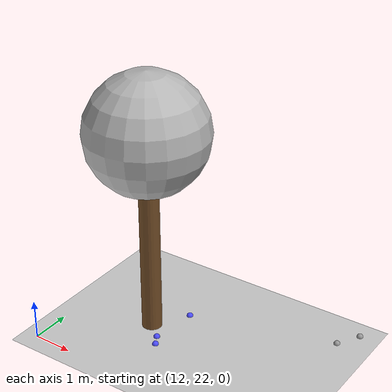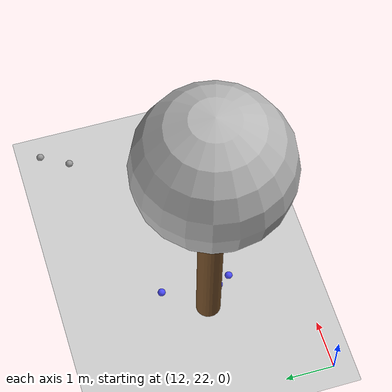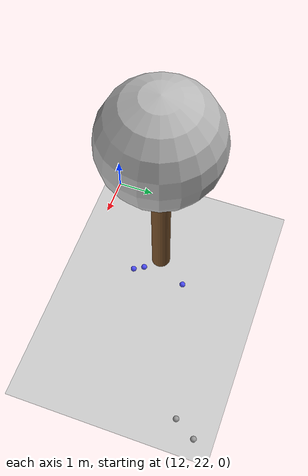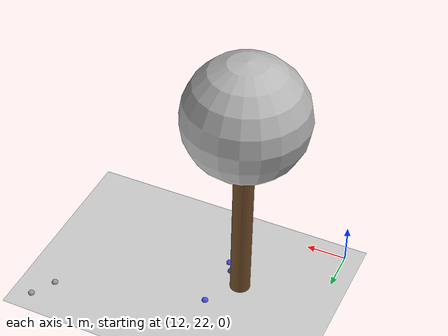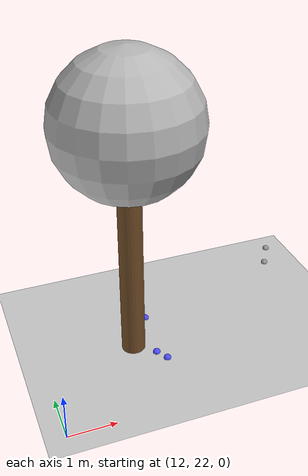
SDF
<sdf version="1.7">
 <world name="default">
  <model name="ground_plane">
   <static>1</static>
   <link name="link">
    <collision name="collision">
     <geometry><plane><normal>0 0 1</normal><size>100 100</size></plane></geometry>
     <surface>
      <contact><collide_bitmask>65535</collide_bitmask></contact>
      <friction><ode><mu>100</mu><mu2>50</mu2></ode></friction>
     </surface>
    </collision>
    <visual name="visual">
     <cast_shadows>0</cast_shadows>
     <geometry><plane><normal>0 0 1</normal><size>100 100</size></plane></geometry>
     <material>
      <script><uri>file://media/materials/scripts/gazebo.material</uri><name>Gazebo/Grey</name></script>
     </material>
    </visual>
   </link>
  </model>
  <model name="tree_simple_39">
   <static>1</static>
   <link name="link">
    <pose>0 0 0.1 0 -0 0</pose>
    <inertial>
     <mass>666</mass>
     <inertia>
      <ixx>0.0861167</ixx>
      <ixy>0</ixy>
      <ixz>0</ixz>
      <iyy>0.0861167</iyy>
      <iyz>0</iyz>
      <izz>0.0861167</izz>
     </inertia>
    </inertial>
    <collision name="collision_trunk">
     <pose>0 0 2 0 -0 0</pose>
     <geometry><cylinder><radius>0.25</radius><length>4</length></cylinder></geometry>
     <surface>
      <contact>
       <poissons_ratio>0.347</poissons_ratio>
       <elastic_modulus>8.8e+09</elastic_modulus>
       <ode><kp>100000</kp><kd>100</kd><max_vel>100</max_vel><min_depth>0.001</min_depth></ode>
      </contact>
      <friction>
       <torsional>
        <coefficient>1</coefficient>
        <use_patch_radius>0</use_patch_radius>
        <surface_radius>0.01</surface_radius>
       </torsional>
      </friction>
     </surface>
    </collision>
    <collision name="collision_treetop">
     <pose>0 0 5.2 0 -0 0</pose>
     <geometry><sphere><radius>1.5</radius></sphere></geometry>
     <surface>
      <contact>
       <poissons_ratio>0.347</poissons_ratio>
       <elastic_modulus>8.8e+09</elastic_modulus>
       <ode><kp>100000</kp><kd>100</kd><max_vel>100</max_vel><min_depth>0.001</min_depth></ode>
      </contact>
      <friction>
       <torsional>
        <coefficient>1</coefficient>
        <use_patch_radius>0</use_patch_radius>
        <surface_radius>0.01</surface_radius>
       </torsional>
      </friction>
     </surface>
    </collision>
    <visual name="trunk">
     <pose>0 0 2 0 -0 0</pose>
     <geometry><cylinder><radius>0.25</radius><length>4</length></cylinder></geometry>
     <material>
      <script>
       <uri>model://tree_simple/scripts</uri>
       <uri>model://tree_simple/materials/textures</uri>
       <name>TreeSimple/Trunk</name>
      </script>
     </material>
    </visual>
    <visual name="treetop">
     <pose>0 0 5.2 0 -0 0</pose>
     <geometry><sphere><radius>1.5</radius></sphere></geometry>
     <material>
      <script>
       <uri>model://tree_simple/scripts</uri>
       <uri>model://tree_simple/materials/textures</uri>
       <name>TreeSimple/Treetop</name>
      </script>
     </material>
    </visual>
   </link>
   <pose>14 24 -0.1 0 -0 0</pose>
  </model>
  <model name="seed_black_25">
   <link name="link">
    <inertial>
     <mass>1</mass>
     <inertia><ixx>0.1</ixx><ixy>0</ixy><ixz>0</ixz><iyy>0.1</iyy><iyz>0</iyz><izz>0.1</izz></inertia>
    </inertial>
    <visual name="visual">
     <geometry><sphere><radius>0.08</radius></sphere></geometry>
     <material>
      <script><name>Gazebo/Grey</name><uri>file://media/materials/scripts/gazebo.material</uri></script>
      <shader type="pixel"><normal_map>__default__</normal_map></shader>
      <ambient>0 0 0 1</ambient>
      <diffuse>0.7 0.7 0.7 1</diffuse>
      <specular>0.01 0.01 0.01 1</specular>
      <emissive>0 0 0 1</emissive>
     </material>
    </visual>
    <collision name="collision">
     <geometry><sphere><radius>0.0005</radius></sphere></geometry>
     <surface>
      <friction>
       <ode><mu>1</mu><mu2>1</mu2><fdir1>0 0 0</fdir1><slip1>0</slip1><slip2>0</slip2></ode>
       <torsional>
        <coefficient>1</coefficient>
        <patch_radius>0</patch_radius>
        <surface_radius>0</surface_radius>
        <use_patch_radius>1</use_patch_radius>
        <ode><slip>0</slip></ode>
       </torsional>
      </friction>
      <bounce><restitution_coefficient>0</restitution_coefficient><threshold>1e+06</threshold></bounce>
      <contact>
       <collide_without_contact>0</collide_without_contact>
       <collide_without_contact_bitmask>1</collide_without_contact_bitmask>
       <collide_bitmask>1</collide_bitmask>
       <ode>
        <soft_cfm>0</soft_cfm>
        <soft_erp>0.2</soft_erp>
        <kp>1e+13</kp>
        <kd>1</kd>
        <max_vel>0.01</max_vel>
        <min_depth>0</min_depth>
       </ode>
       <bullet>
        <split_impulse>1</split_impulse>
        <split_impulse_penetration_threshold>-0.01</split_impulse_penetration_threshold>
        <soft_cfm>0</soft_cfm>
        <soft_erp>0.2</soft_erp>
        <kp>1e+13</kp>
        <kd>1</kd>
       </bullet>
      </contact>
     </surface>
    </collision>
   </link>
   <static>0</static>
   <pose>18.4828 26.4366 0.0005 0 -0 0</pose>
  </model>
  <model name="seed_black_29">
   <link name="link">
    <inertial>
     <mass>1</mass>
     <inertia><ixx>0.1</ixx><ixy>0</ixy><ixz>0</ixz><iyy>0.1</iyy><iyz>0</iyz><izz>0.1</izz></inertia>
    </inertial>
    <visual name="visual">
     <geometry><sphere><radius>0.08</radius></sphere></geometry>
     <material>
      <script><name>Gazebo/Grey</name><uri>file://media/materials/scripts/gazebo.material</uri></script>
      <shader type="pixel"><normal_map>__default__</normal_map></shader>
      <ambient>0 0 0 1</ambient>
      <diffuse>0.7 0.7 0.7 1</diffuse>
      <specular>0.01 0.01 0.01 1</specular>
      <emissive>0 0 0 1</emissive>
     </material>
    </visual>
    <collision name="collision">
     <geometry><sphere><radius>0.0005</radius></sphere></geometry>
     <surface>
      <friction>
       <ode><mu>1</mu><mu2>1</mu2><fdir1>0 0 0</fdir1><slip1>0</slip1><slip2>0</slip2></ode>
       <torsional>
        <coefficient>1</coefficient>
        <patch_radius>0</patch_radius>
        <surface_radius>0</surface_radius>
        <use_patch_radius>1</use_patch_radius>
        <ode><slip>0</slip></ode>
       </torsional>
      </friction>
      <bounce><restitution_coefficient>0</restitution_coefficient><threshold>1e+06</threshold></bounce>
      <contact>
       <collide_without_contact>0</collide_without_contact>
       <collide_without_contact_bitmask>1</collide_without_contact_bitmask>
       <collide_bitmask>1</collide_bitmask>
       <ode>
        <soft_cfm>0</soft_cfm>
        <soft_erp>0.2</soft_erp>
        <kp>1e+13</kp>
        <kd>1</kd>
        <max_vel>0.01</max_vel>
        <min_depth>0</min_depth>
       </ode>
       <bullet>
        <split_impulse>1</split_impulse>
        <split_impulse_penetration_threshold>-0.01</split_impulse_penetration_threshold>
        <soft_cfm>0</soft_cfm>
        <soft_erp>0.2</soft_erp>
        <kp>1e+13</kp>
        <kd>1</kd>
       </bullet>
      </contact>
     </surface>
    </collision>
   </link>
   <static>0</static>
   <pose>18.1495 25.8729 0.0005 0 -0 0</pose>
  </model>
  <model name="seed_blue_66">
   <link name="link">
    <inertial>
     <mass>1</mass>
     <inertia><ixx>0.1</ixx><ixy>0</ixy><ixz>0</ixz><iyy>0.1</iyy><iyz>0</iyz><izz>0.1</izz></inertia>
    </inertial>
    <visual name="visual">
     <geometry><sphere><radius>0.08</radius></sphere></geometry>
     <material>
      <script><name>Gazebo/Grey</name><uri>file://media/materials/scripts/gazebo.material</uri></script>
      <shader type="pixel"><normal_map>__default__</normal_map></shader>
      <ambient>0.3 0.3 1 1</ambient>
      <diffuse>0.7 0.7 0.7 1</diffuse>
      <specular>0.01 0.01 0.01 1</specular>
      <emissive>0 0 0 1</emissive>
     </material>
    </visual>
    <collision name="collision">
     <geometry><sphere><radius>0.0005</radius></sphere></geometry>
     <surface>
      <friction>
       <ode><mu>1</mu><mu2>1</mu2><fdir1>0 0 0</fdir1><slip1>0</slip1><slip2>0</slip2></ode>
       <torsional>
        <coefficient>1</coefficient>
        <patch_radius>0</patch_radius>
        <surface_radius>0</surface_radius>
        <use_patch_radius>1</use_patch_radius>
        <ode><slip>0</slip></ode>
       </torsional>
      </friction>
      <bounce><restitution_coefficient>0</restitution_coefficient><threshold>1e+06</threshold></bounce>
      <contact>
       <collide_without_contact>0</collide_without_contact>
       <collide_without_contact_bitmask>1</collide_without_contact_bitmask>
       <collide_bitmask>1</collide_bitmask>
       <ode>
        <soft_cfm>0</soft_cfm>
        <soft_erp>0.2</soft_erp>
        <kp>1e+13</kp>
        <kd>1</kd>
        <max_vel>0.01</max_vel>
        <min_depth>0</min_depth>
       </ode>
       <bullet>
        <split_impulse>1</split_impulse>
        <split_impulse_penetration_threshold>-0.01</split_impulse_penetration_threshold>
        <soft_cfm>0</soft_cfm>
        <soft_erp>0.2</soft_erp>
        <kp>1e+13</kp>
        <kd>1</kd>
       </bullet>
      </contact>
     </surface>
    </collision>
   </link>
   <static>0</static>
   <pose>14.403 23.6443 0.0005 0 -0 0</pose>
  </model>
  <model name="seed_blue_68">
   <link name="link">
    <inertial>
     <mass>1</mass>
     <inertia><ixx>0.1</ixx><ixy>0</ixy><ixz>0</ixz><iyy>0.1</iyy><iyz>0</iyz><izz>0.1</izz></inertia>
    </inertial>
    <visual name="visual">
     <geometry><sphere><radius>0.08</radius></sphere></geometry>
     <material>
      <script><name>Gazebo/Grey</name><uri>file://media/materials/scripts/gazebo.material</uri></script>
      <shader type="pixel"><normal_map>__default__</normal_map></shader>
      <ambient>0.3 0.3 1 1</ambient>
      <diffuse>0.7 0.7 0.7 1</diffuse>
      <specular>0.01 0.01 0.01 1</specular>
      <emissive>0 0 0 1</emissive>
     </material>
    </visual>
    <collision name="collision">
     <geometry><sphere><radius>0.0005</radius></sphere></geometry>
     <surface>
      <friction>
       <ode><mu>1</mu><mu2>1</mu2><fdir1>0 0 0</fdir1><slip1>0</slip1><slip2>0</slip2></ode>
       <torsional>
        <coefficient>1</coefficient>
        <patch_radius>0</patch_radius>
        <surface_radius>0</surface_radius>
        <use_patch_radius>1</use_patch_radius>
        <ode><slip>0</slip></ode>
       </torsional>
      </friction>
      <bounce><restitution_coefficient>0</restitution_coefficient><threshold>1e+06</threshold></bounce>
      <contact>
       <collide_without_contact>0</collide_without_contact>
       <collide_without_contact_bitmask>1</collide_without_contact_bitmask>
       <collide_bitmask>1</collide_bitmask>
       <ode>
        <soft_cfm>0</soft_cfm>
        <soft_erp>0.2</soft_erp>
        <kp>1e+13</kp>
        <kd>1</kd>
        <max_vel>0.01</max_vel>
        <min_depth>0</min_depth>
       </ode>
       <bullet>
        <split_impulse>1</split_impulse>
        <split_impulse_penetration_threshold>-0.01</split_impulse_penetration_threshold>
        <soft_cfm>0</soft_cfm>
        <soft_erp>0.2</soft_erp>
        <kp>1e+13</kp>
        <kd>1</kd>
       </bullet>
      </contact>
     </surface>
    </collision>
   </link>
   <static>0</static>
   <pose>14.5527 23.3887 0.0005 0 -0 0</pose>
  </model>
  <model name="seed_blue_69">
   <link name="link">
    <inertial>
     <mass>1</mass>
     <inertia><ixx>0.1</ixx><ixy>0</ixy><ixz>0</ixz><iyy>0.1</iyy><iyz>0</iyz><izz>0.1</izz></inertia>
    </inertial>
    <visual name="visual">
     <geometry><sphere><radius>0.08</radius></sphere></geometry>
     <material>
      <script><name>Gazebo/Grey</name><uri>file://media/materials/scripts/gazebo.material</uri></script>
      <shader type="pixel"><normal_map>__default__</normal_map></shader>
      <ambient>0.3 0.3 1 1</ambient>
      <diffuse>0.7 0.7 0.7 1</diffuse>
      <specular>0.01 0.01 0.01 1</specular>
      <emissive>0 0 0 1</emissive>
     </material>
    </visual>
    <collision name="collision">
     <geometry><sphere><radius>0.0005</radius></sphere></geometry>
     <surface>
      <friction>
       <ode><mu>1</mu><mu2>1</mu2><fdir1>0 0 0</fdir1><slip1>0</slip1><slip2>0</slip2></ode>
       <torsional>
        <coefficient>1</coefficient>
        <patch_radius>0</patch_radius>
        <surface_radius>0</surface_radius>
        <use_patch_radius>1</use_patch_radius>
        <ode><slip>0</slip></ode>
       </torsional>
      </friction>
      <bounce><restitution_coefficient>0</restitution_coefficient><threshold>1e+06</threshold></bounce>
      <contact>
       <collide_without_contact>0</collide_without_contact>
       <collide_without_contact_bitmask>1</collide_without_contact_bitmask>
       <collide_bitmask>1</collide_bitmask>
       <ode>
        <soft_cfm>0</soft_cfm>
        <soft_erp>0.2</soft_erp>
        <kp>1e+13</kp>
        <kd>1</kd>
        <max_vel>0.01</max_vel>
        <min_depth>0</min_depth>
       </ode>
       <bullet>
        <split_impulse>1</split_impulse>
        <split_impulse_penetration_threshold>-0.01</split_impulse_penetration_threshold>
        <soft_cfm>0</soft_cfm>
        <soft_erp>0.2</soft_erp>
        <kp>1e+13</kp>
        <kd>1</kd>
       </bullet>
      </contact>
     </surface>
    </collision>
   </link>
   <static>0</static>
   <pose>14.5616 24.8269 0.0005 0 -0 0</pose>
  </model>
 </world>
</sdf>
